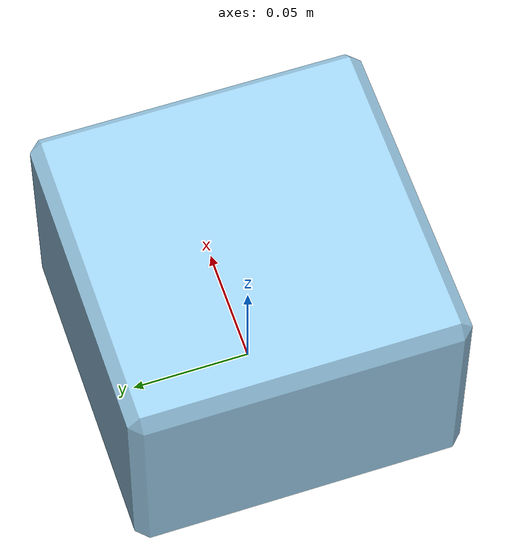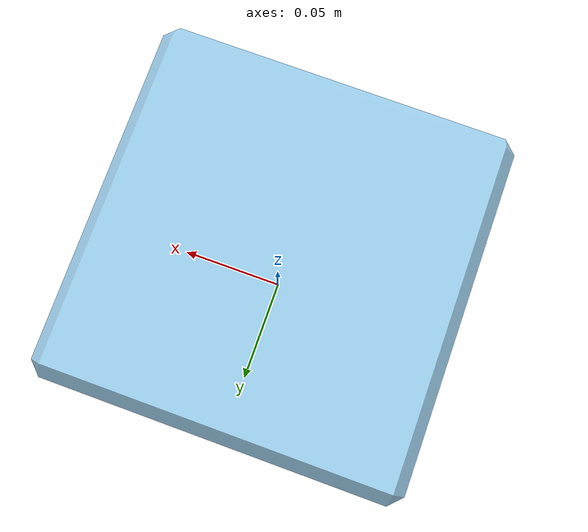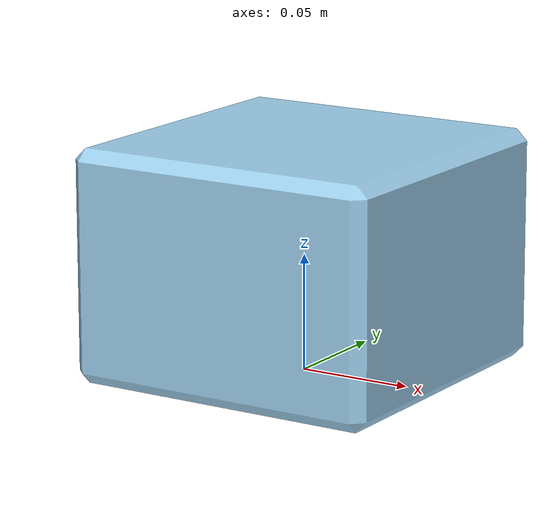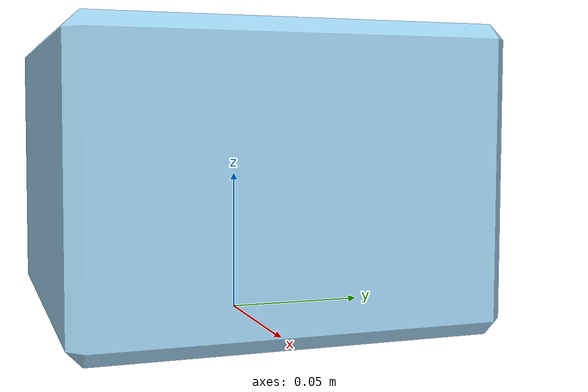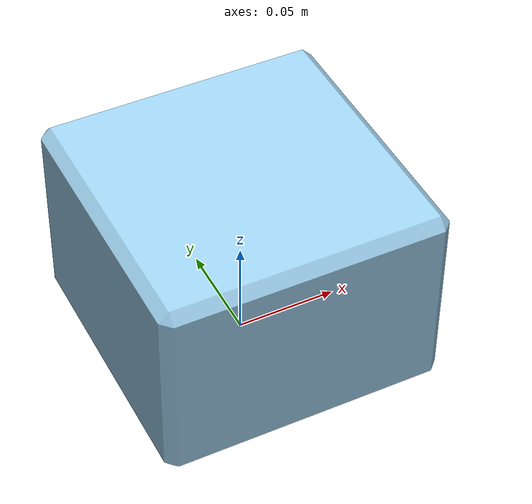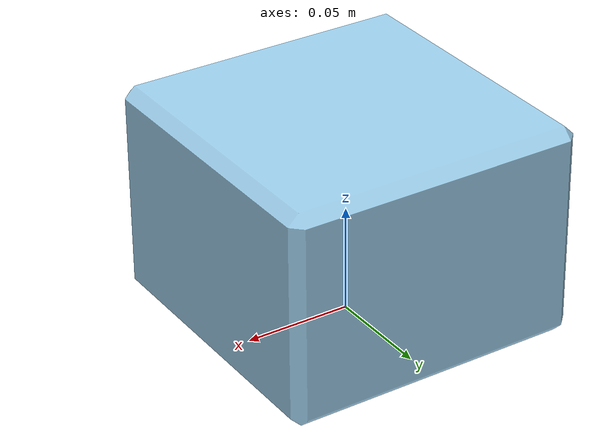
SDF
<?xml version="1.0"?>
<sdf version="1.4">
    <model name="small_package">
        <pose>0 0 0 0 0 0</pose>
        <link name="small_package">
            <inertial>
                <mass>1</mass>
                <ixx>0.00053</ixx>
                <ixy>0.0</ixy>
                <ixz>0.0</ixz>
                <iyy>0.00053</iyy>
                <iyz>0.0</iyz>
                <izz>0.000853</izz>
            </inertial>
            <visual name="visual">
                <geometry>
                    <mesh>
                        <uri>model://packages/small_package.dae</uri>
                    </mesh>
                </geometry>
            </visual>
            <collision name="collision">
                <geometry>
                    <mesh>
                        <uri>model://packages/small_package.dae</uri>
                    </mesh>
                </geometry>
            </collision>
        </link>
    </model>
</sdf>
